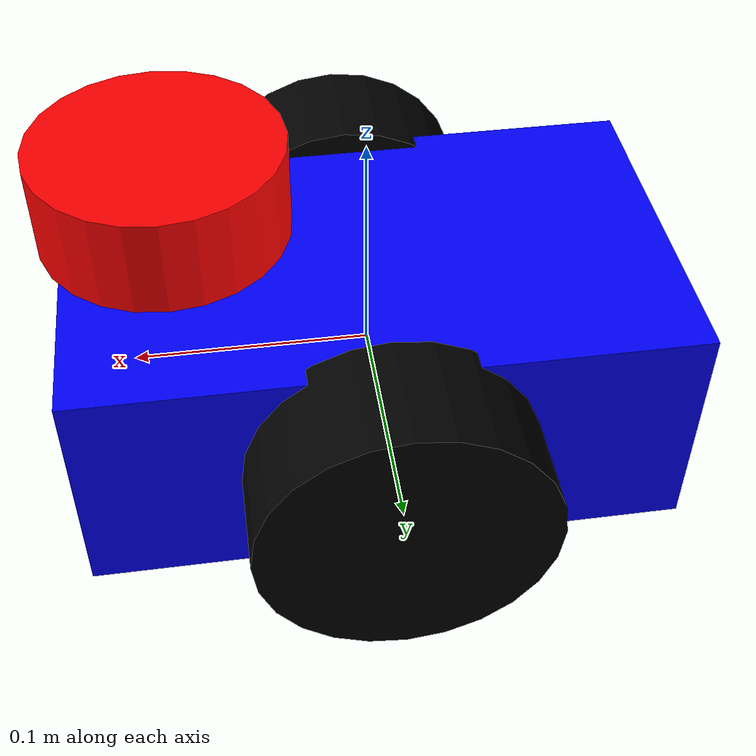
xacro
<?xml version="1.0"?>
<robot xmlns:xacro="http://www.ros.org/wiki/xacro" name="bungy_visual">

  <!-- Robot physical properties - need to redeclare for access -->
  <xacro:property name="wheel_separation" value="0.184" />
  <xacro:property name="wheel_radius" value="0.06" />
  <xacro:property name="base_width" value="0.25" />
  <xacro:property name="base_length" value="0.15" />
  <xacro:property name="base_height" value="0.1" />

  <!-- Materials for visualization -->
  <material name="blue">
    <color rgba="0.0 0.0 1.0 1.0"/>
  </material>

  <material name="black">
    <color rgba="0.0 0.0 0.0 1.0"/>
  </material>

  <material name="red">
    <color rgba="1.0 0.0 0.0 1.0"/>
  </material>

  <!-- Base link with visuals -->
  <link name="base_link">
    <visual>
      <geometry>
        <box size="${base_width} ${base_length} ${base_height}"/>
      </geometry>
      <material name="blue"/>
    </visual>
    <collision>
      <geometry>
        <box size="${base_width} ${base_length} ${base_height}"/>
      </geometry>
    </collision>
    <inertial>
      <mass value="2.0"/>
      <inertia ixx="0.02" ixy="0.0" ixz="0.0" iyy="0.05" iyz="0.0" izz="0.06"/>
    </inertial>
  </link>

  <!-- Left wheel link with visuals -->
  <link name="left_wheel_link">
    <visual>
      <geometry>
        <cylinder radius="${wheel_radius}" length="0.05"/>
      </geometry>
      <material name="black"/>
    </visual>
    <collision>
      <geometry>
        <cylinder radius="${wheel_radius}" length="0.05"/>
      </geometry>
    </collision>
    <inertial>
      <mass value="0.1"/>
      <inertia ixx="0.001" ixy="0.0" ixz="0.0" iyy="0.001" iyz="0.0" izz="0.001"/>
    </inertial>
  </link>

  <!-- Right wheel link with visuals -->
  <link name="right_wheel_link">
    <visual>
      <geometry>
        <cylinder radius="${wheel_radius}" length="0.05"/>
      </geometry>
      <material name="black"/>
    </visual>
    <collision>
      <geometry>
        <cylinder radius="${wheel_radius}" length="0.05"/>
      </geometry>
    </collision>
    <inertial>
      <mass value="0.1"/>
      <inertia ixx="0.001" ixy="0.0" ixz="0.0" iyy="0.001" iyz="0.0" izz="0.001"/>
    </inertial>
  </link>

  <!-- Left wheel joint -->
  <joint name="left_wheel_joint" type="continuous">
    <parent link="base_link"/>
    <child link="left_wheel_link"/>
    <origin xyz="0.0 ${wheel_separation/2} 0.0" rpy="-${pi/2} 0 0"/>
    <axis xyz="0 0 1"/>
  </joint>

  <!-- Right wheel joint -->
  <joint name="right_wheel_joint" type="continuous">
    <parent link="base_link"/>
    <child link="right_wheel_link"/>
    <origin xyz="0.0 -${wheel_separation/2} 0.0" rpy="-${pi/2} 0 0"/>
    <axis xyz="0 0 1"/>
  </joint>

  <!-- LIDAR link with visuals -->
  <link name="laser_link">
    <visual>
      <geometry>
        <cylinder radius="0.05" length="0.04"/>
      </geometry>
      <material name="red"/>
    </visual>
    <collision>
      <geometry>
        <cylinder radius="0.05" length="0.04"/>
      </geometry>
    </collision>
    <inertial>
      <mass value="0.125"/>
      <inertia ixx="0.001" ixy="0.0" ixz="0.0" iyy="0.001" iyz="0.0" izz="0.001"/>
    </inertial>
  </link>

  <!-- LIDAR joint -->
  <joint name="laser_joint" type="fixed">
    <parent link="base_link"/>
    <child link="laser_link"/>
    <origin xyz="0.08 0.0 0.09" rpy="0 0 0"/>
  </joint>

</robot>
